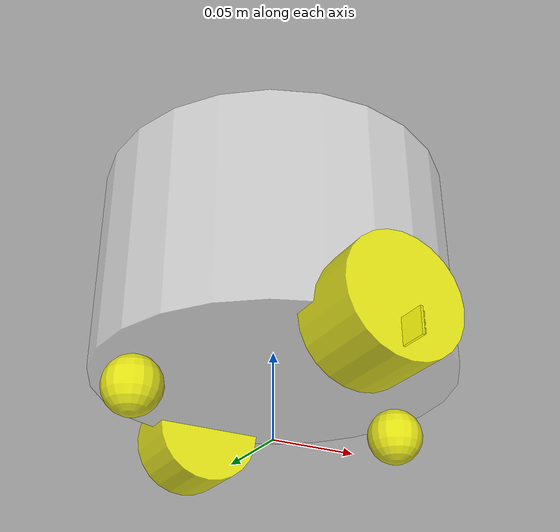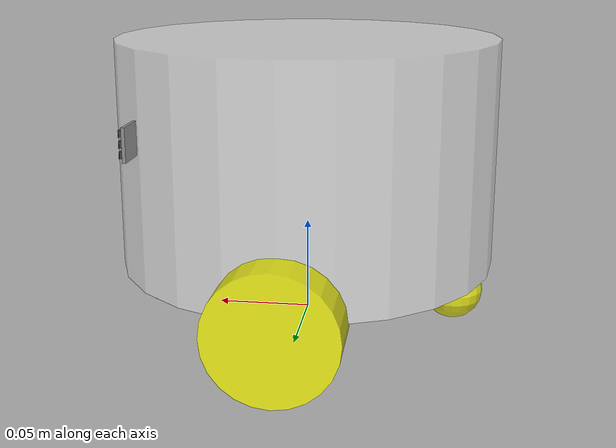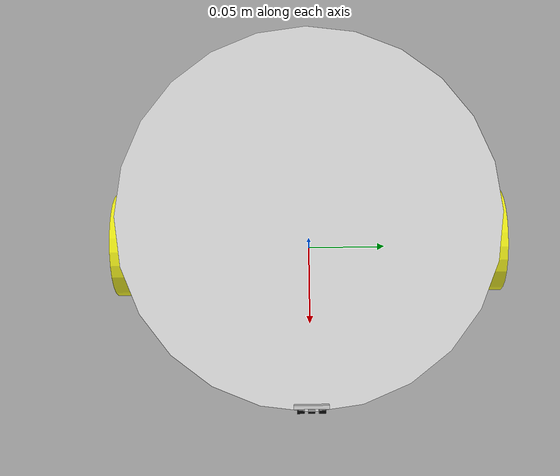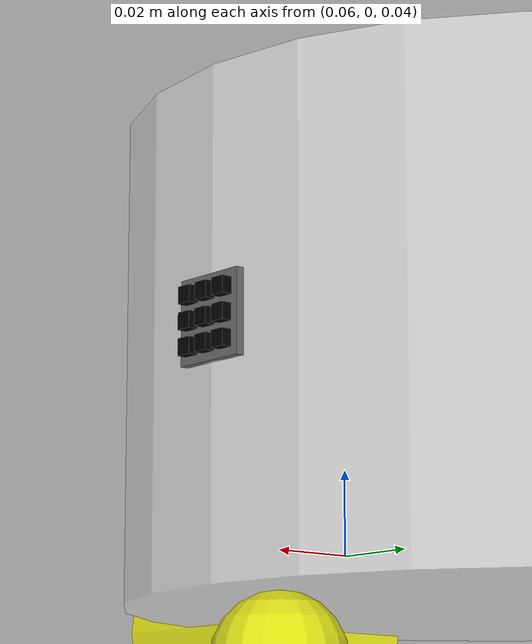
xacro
<?xml version="1.0"?>
<robot xmlns:xacro="http://www.ros.org/wiki/xacro" name="robot">
<!-- Include the base URDF -->
<xacro:include filename="$(find robot_description)/urdf/light_robot/base.urdf.xacro"/>
<!-- Include the camera sensor URDF -->
<xacro:include filename="$(find robot_description)/urdf/light_robot/sensor/camera.urdf.xacro"/>
<!-- Include the IMU sensor URDF -->
<xacro:include filename="$(find robot_description)/urdf/light_robot/sensor/imu.urdf.xacro"/>
<xacro:include filename="$(find robot_description)/urdf/light_robot/actuator/wheel.urdf.xacro"/>
<xacro:include filename="$(find robot_description)/urdf/light_robot/actuator/caster.urdf.xacro"/>
<!-- Include the gazebo control plugin -->
<xacro:include filename="$(find robot_description)/urdf/light_robot/plugins/gazebo_control_plugin.xacro"/>
<xacro:include filename="$(find robot_description)/urdf/light_robot/plugins/gazebo_sensor_plugin.xacro"/>
<xacro:include filename="$(find robot_description)/urdf/light_robot/lightfieldrobot_control.xacro"/>

<xacro:base_xacro length="0.12" radius="0.1"/>
<xacro:IMU_xacro xyz="0 0 0.02"/>
<joint name="camera_mount_joint" type="fixed">
    <parent link="base_link"/>
    <child link="camera_stand_link"/>
    <!-- cylinder length 0.12 -> top surface at z=0.06; board sits just above it -->
    <origin xyz="0.1 0 0.0" rpy="0 ${pi/2} 0"/>
</joint>

<xacro:wheel_xacro wheel_name="left_wheel" xyz="0 0.10 -0.06"/>
<xacro:wheel_xacro wheel_name="right_wheel" xyz="0 -0.10 -0.06"/>
<xacro:caster_xacro caster_name="front_caster" xyz="0.08 0 -0.076"/>
<xacro:caster_xacro caster_name="back_caster" xyz="-0.08 0 -0.076"/>

<xacro:gazebo_sensor_plugins/>
<xacro:mybot_ros2_control/>

</robot>

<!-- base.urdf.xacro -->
<!-- 这是版本提示 -->
<robot xmlns:xacro="http://www.ros.org/wiki/xacro">
    <xacro:include filename="$(find robot_description)/urdf/light_robot/common_inertia.xacro"/>

    <xacro:macro name ="base_xacro" params="length radius">
        <!-- 虚拟部件，使机器贴合地面 -->
        <link name="base_footprint"/>
        <!-- 机器人的身体 -->
        <link name="base_link">
            <!-- 部件的外观描述 -->
            <visual>
                <!-- 沿着自己几何中心偏移和旋转 -->
                <origin xyz="0.0 0.0 0.0" rpy="0.0 0.0 0.0"/>
                <!-- 几何形状 -->
                <geometry>
                    <!-- 圆柱体 -->
                    <cylinder radius="${radius}" length="${length}"/>
                </geometry>
                <!-- 材质颜色 -->
                <material name="white">
                    <color rgba="1.0 1.0 1.0 0.5"/>
                </material>
            </visual>
            <collision>
                    <!-- 沿着自己几何中心偏移和旋转 -->
                    <origin xyz="0.0 0.0 0.0" rpy="0.0 0.0 0.0"/>
                    <!-- 几何形状 -->
                    <geometry>
                        <!-- 圆柱体 -->
                        <cylinder radius="${radius}" length="${length}"/>
                    </geometry>
            </collision>

            <xacro:cylinder_inertia m = "1.0" r="${radius}" h="${length}" />
        </link>

        <joint name="joint_name" type="fixed">
            <parent link="base_footprint"/>
            <child link="base_link"/>
            <origin xyz="0 0 ${length/2.0 + 0.032 - 0.001}" rpy="0 0 0"/>
        </joint>
    </xacro:macro>
</robot>

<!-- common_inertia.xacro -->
<robot xmlns:xacro="http://ros.org/wiki/xacro">
    <xacro:macro name="box_inertia" params="m w h d">
        <inertial>
            <mass value="${m}" />
            <inertia ixx="${(m/12) * (h*h + d*d)}" ixy="0.0" ixz="0.0" iyy="${(m/12) * (w*w + d*d)}" iyz="0.0" izz="${(m/12) * (w*w + h*h)}" />
        </inertial>
    </xacro:macro>

    <xacro:macro name="cylinder_inertia" params="m r h">
        <inertial>
            <mass value="${m}" />
            <inertia ixx="${(m/12) * (3*r*r + h*h)}" ixy="0" ixz="0" iyy="${(m/12) * (3*r*r + h*h)}" iyz="0" izz="${(m/2) * (r*r)}" />
        </inertial>
    </xacro:macro>

    <xacro:macro name="sphere_inertia" params="m r">
        <inertial>
            <mass value="${m}" />
            <inertia ixx="${(2/5) * m * (r*r)}" ixy="0.0" ixz="0.0" iyy="${(2/5) * m * (r*r)}" iyz="0.0" izz="${(2/5) * m * (r*r)}" />
        </inertial>
    </xacro:macro>

</robot>

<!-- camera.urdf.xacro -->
<!-- 这是版本提示 -->
<robot xmlns:xacro="http://www.ros.org/wiki/xacro">
    <xacro:include filename="$(find robot_description)/urdf/light_robot/common_inertia.xacro"/>

    <!-- 定义整个相机阵列 -->
    <xacro:property name="camera_spacing" value="0.006"/> <!-- 相机间距6mm -->
    <xacro:property name="dense_step" value="${camera_spacing / 2}"/> <!-- 虚拟 dense 步长 s = 3 mm -->
    <xacro:property name="broad_size" value="0.02"/> <!-- 底板 20mm × 20mm -->
    <xacro:property name="cam_size" value="0.004"/> <!-- 相机外观 4mm(要小于间距,否则互相穿模) -->

    <!-- 机器人的camera底板 -->
    <link name="camera_stand_link">
        <!-- 部件的外观描述 -->
        <visual>
            <!-- 沿着自己几何中心偏移和旋转 -->
            <origin xyz="0.0 0.0 0.0" rpy="0.0 0.0 0.0"/>
            <!-- 几何形状 -->
            <geometry>
                <!-- 立方体 -->
                <box size="${broad_size} ${broad_size} 0.002"/>
            </geometry>
            <!-- 材质颜色 -->
            <material name="black">
                <color rgba="0.4 0.4 0.4 1"/>
            </material>
        </visual>
        <collision>
                <!-- 沿着自己几何中心偏移和旋转 -->
                <origin xyz="0.0 0.0 0.0" rpy="0.0 0.0 0.0"/>
                <!-- 几何形状 -->
                <geometry>
                    <!-- 立方体 -->
                    <box size="${broad_size} ${broad_size} 0.002"/>
                </geometry>
                <!-- 材质颜色 -->
                <material name="black">
                    <color rgba="0.4 0.4 0.4 1"/>
                </material>
        </collision>
        <xacro:box_inertia m = "0.1" w="${broad_size}" d="${broad_size}" h="0.002" />
    </link>

    <xacro:macro name ="camera_xacro" params=" index u v">
        <!-- 机器人的camera -->
        <link name="camera_${index}_link">
            <!-- 部件的外观描述 -->
            <visual>
                <!-- 相机外观在本体坐标系中心;实际摆放位置由下面 joint 决定 -->
                <origin xyz="0.0 0.0 0.0" rpy="0.0 0.0 0.0"/>
                <!-- 几何形状 -->
                <geometry>
                    <!-- 立方体 -->
                    <box size="${cam_size} ${cam_size} ${cam_size}"/>
                </geometry>
                <!-- 材质颜色 -->
                <material name="black">
                    <color rgba="0.0 0.0 0.0 1"/>
                </material>
            </visual>
            <collision>
                    <!-- 相机外观在本体坐标系中心;实际摆放位置由下面 joint 决定 -->
                    <origin xyz="0.0 0.0 0.0" rpy="0.0 0.0 0.0"/>
                    <!-- 几何形状 -->
                    <geometry>
                        <!-- 立方体 -->
                        <box size="${cam_size} ${cam_size} ${cam_size}"/>
                    </geometry>
                    <!-- 材质颜色 -->
            </collision>
            <xacro:box_inertia m = "0.1" w="${cam_size}" d="${cam_size}" h="${cam_size}" />
        </link>

        <link name="camera_${index}_optical_link"></link>

        <!-- 机器人的关节，用于组合机器人的部件, type是可动还是不可动 -->
        <joint name="camera_${index}_joint" type="fixed">
            <!-- 关节的父部件 -->
            <parent link="camera_stand_link"/>
            <!-- 关节的子部件 -->
            <child link="camera_${index}_link"/>
            <!-- 物理位置 = dense 角坐标 × dense 步长;z 是贴板高度 -->
            <!-- 绕 Y 轴 -90°:让相机 body 的 +X 朝前(板子法线),即 x前 y左 z上 -->
            <origin xyz="${u * dense_step } ${v * dense_step } 0.0015" rpy="0.0 ${-pi/2} 0.0"/>
        </joint>

        <joint name="camera_${index}_optical_joint" type="fixed">
            <!-- 关节的父部件 -->
            <parent link="camera_${index}_link"/>
            <!-- 关节的子部件 -->
            <child link="camera_${index}_optical_link"/>
            <!-- 标准 body -> optical 变换:x右 y下 z前 -->
            <origin xyz="0 0 0" rpy="${-pi/2} 0.0 ${-pi/2}"/>
        </joint>

        <gazebo reference="camera_stand_link">
            <material>Gazebo/Black</material>
        </gazebo>
        <gazebo reference="camera_${index}_link">
            <material>Gazebo/Red</material>
        </gazebo>

    </xacro:macro>

    <!-- ======== 9 台实例:顺序 = 代码里的 SOURCE_COORDINATES,绝对不能乱 ======== -->
    <xacro:camera_xacro index="0" u="-2" v="-2"/>
    <xacro:camera_xacro index="1" u="-2" v="0"/>
    <xacro:camera_xacro index="2" u="-2" v="2"/>
    <xacro:camera_xacro index="3" u="0"  v="-2"/>
    <xacro:camera_xacro index="4" u="0"  v="0"/>   <!-- 中心相机 -->
    <xacro:camera_xacro index="5" u="0"  v="2"/>
    <xacro:camera_xacro index="6" u="2"  v="-2"/>
    <xacro:camera_xacro index="7" u="2"  v="0"/>
    <xacro:camera_xacro index="8" u="2"  v="2"/>

</robot>

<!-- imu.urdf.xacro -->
<!-- 这是版本提示 -->
<robot xmlns:xacro="http://www.ros.org/wiki/xacro">
    <xacro:include filename="$(find robot_description)/urdf/light_robot/common_inertia.xacro"/>

    <xacro:macro name ="IMU_xacro" params=" xyz">
        <!-- 机器人的IMU，惯性测量单元传感器 -->
        <link name="imu_link">
            <!-- 部件的外观描述 -->
            <visual>
                <!-- 沿着自己几何中心偏移和旋转 -->
                <origin xyz="${xyz}" rpy="0.0 0.0 0.0"/>
                <!-- 几何形状 -->
                <geometry>
                    <!-- 立方体 -->
                    <box size="0.02 0.02 0.02"/>
                </geometry>
                <!-- 材质颜色 -->
                <material name="black">
                    <color rgba="0.0 0.0 0.0 0.5"/>
                </material>
            </visual>
            <collision>
                    <!-- 几何形状 -->
                    <geometry>
                        <!-- 立方体 -->
                        <box size="0.02 0.02 0.02"/>
                    </geometry>
            </collision>
            <xacro:box_inertia m = "0.05" w="0.02" d="0.02" h="0.02" />
        </link>

        <!-- 机器人的关节，用于组合机器人的部件, type是可动还是不可动 -->
        <joint name="imu_joint" type="fixed">
            <!-- 关节的父部件 -->
            <parent link="base_link"/>
            <!-- 关节的子部件 -->
            <child link="imu_link"/>
            <!-- 关节的偏移和旋转 -->
            <origin xyz="${xyz}" rpy="0.0 0.0 0.0"/>
        </joint>
    </xacro:macro>
</robot>

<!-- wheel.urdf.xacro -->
<!-- 这是版本提示 -->
<robot xmlns:xacro="http://www.ros.org/wiki/xacro">
    <xacro:include filename="$(find robot_description)/urdf/light_robot/common_inertia.xacro"/>
    <xacro:macro name ="wheel_xacro" params="wheel_name xyz">
        <!-- 机器人的IMU，惯性测量单元传感器 -->
        <link name="${wheel_name}_link">
            <!-- 部件的外观描述 -->
            <visual>
                <!-- 沿着自己几何中心偏移和旋转 -->
                <origin xyz="0 0 0" rpy="${pi/2} 0.0 0.0"/>
                <!-- 几何形状 -->
                <geometry>
                    <!-- 立方体 -->
                    <cylinder radius="0.032" length="0.04"/>
                </geometry>
                <!-- 材质颜色 -->
                <material name="yellow">
                    <color rgba="1.0 1.0 0.0 0.8"/>
                </material>
            </visual>
            <collision>
                    <!-- 沿着自己几何中心偏移和旋转 -->
                    <origin xyz="0 0 0" rpy="${pi/2} 0.0 0.0"/>
                    <!-- 几何形状 -->
                    <geometry>
                        <!-- 立方体 -->
                        <cylinder radius="0.032" length="0.04"/>
                    </geometry>
            </collision>
            <xacro:cylinder_inertia m = "0.05" r="0.032" h="0.04" />
        </link>

        <!-- 机器人的关节，用于组合机器人的部件, type是可动还是不可动 -->
        <joint name="${wheel_name}_link_joint" type="continuous">
            <!-- 关节的父部件 -->
            <parent link="base_link"/>
            <!-- 关节的子部件 -->
            <child link="${wheel_name}_link"/>
            <!-- 关节的偏移和旋转 -->
            <origin xyz="${xyz}" rpy="0.0 0.0 0.0"/>
            <axis xyz="0 1 0"/>
        </joint>
        <gazebo reference="${wheel_name}_link">
            <!-- gazebo可以修改该物体的属性mu1 切向摩擦系数，mu2 法向摩擦系数 ，kp 弹性系数 ，kd 阻尼系数 -->
            <mu1 value="20.0"/>
            <mu2 value="20.0"/>
            <kp value="1000000000.0"/>
            <kd value="1.0"/>
            <material>Gazebo/Yellow</material>
        </gazebo>
    </xacro:macro>
</robot>

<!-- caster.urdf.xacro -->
<!-- 这是版本提示 -->
<robot xmlns:xacro="http://www.ros.org/wiki/xacro">
    <xacro:include filename="$(find robot_description)/urdf/light_robot/common_inertia.xacro"/>
    <xacro:macro name ="caster_xacro" params="caster_name xyz">
        <!-- 机器人的IMU，惯性测量单元传感器 -->
        <link name="${caster_name}_link">
            <!-- 部件的外观描述 -->
            <visual>
                <!-- 沿着自己几何中心偏移和旋转 -->
                <origin xyz="0 0 0" rpy="0.0 0.0 0.0"/>
                <!-- 几何形状 -->
                <geometry>
                    <!-- 立方体 -->
                    <sphere radius="0.016"/>
                </geometry>
                <!-- 材质颜色 -->
                <material name="yellow">
                    <color rgba="1.0 1.0 0.0 0.8"/>
                </material>
            </visual>
            <collision>
                <!-- 沿着自己几何中心偏移和旋转 -->
                <origin xyz="0 0 0" rpy="0.0 0.0 0.0"/>
                <!-- 几何形状 -->
                <geometry>
                    <!-- 立方体 -->
                    <sphere radius="0.016"/>
                </geometry>
            </collision>
            <xacro:sphere_inertia m = "0.05" r="0.016"  />
        </link>

        <!-- 机器人的关节，用于组合机器人的部件, type是可动还是不可动 -->
        <joint name="${caster_name}_link_joint" type="fixed">
            <!-- 关节的父部件 -->
            <parent link="base_link"/>
            <!-- 关节的子部件 -->
            <child link="${caster_name}_link"/>
            <!-- 关节的偏移和旋转 -->
            <origin xyz="${xyz}" rpy="0.0 0.0 0.0"/>
        </joint>
        <gazebo reference="${caster_name}_link">
        <!-- gazebo可以修改该物体的属性mu1 切向摩擦系数，mu2 法向摩擦系数 ，kp 弹性系数 ，kd 阻尼系数 -->
            <mu1 value="0.0"/>
            <mu2 value="0.0"/>
            <kp value="1000000000.0"/>
            <kd value="1.0"/>
            <material>Gazebo/Yellow</material>
        </gazebo>
    </xacro:macro>
</robot>
